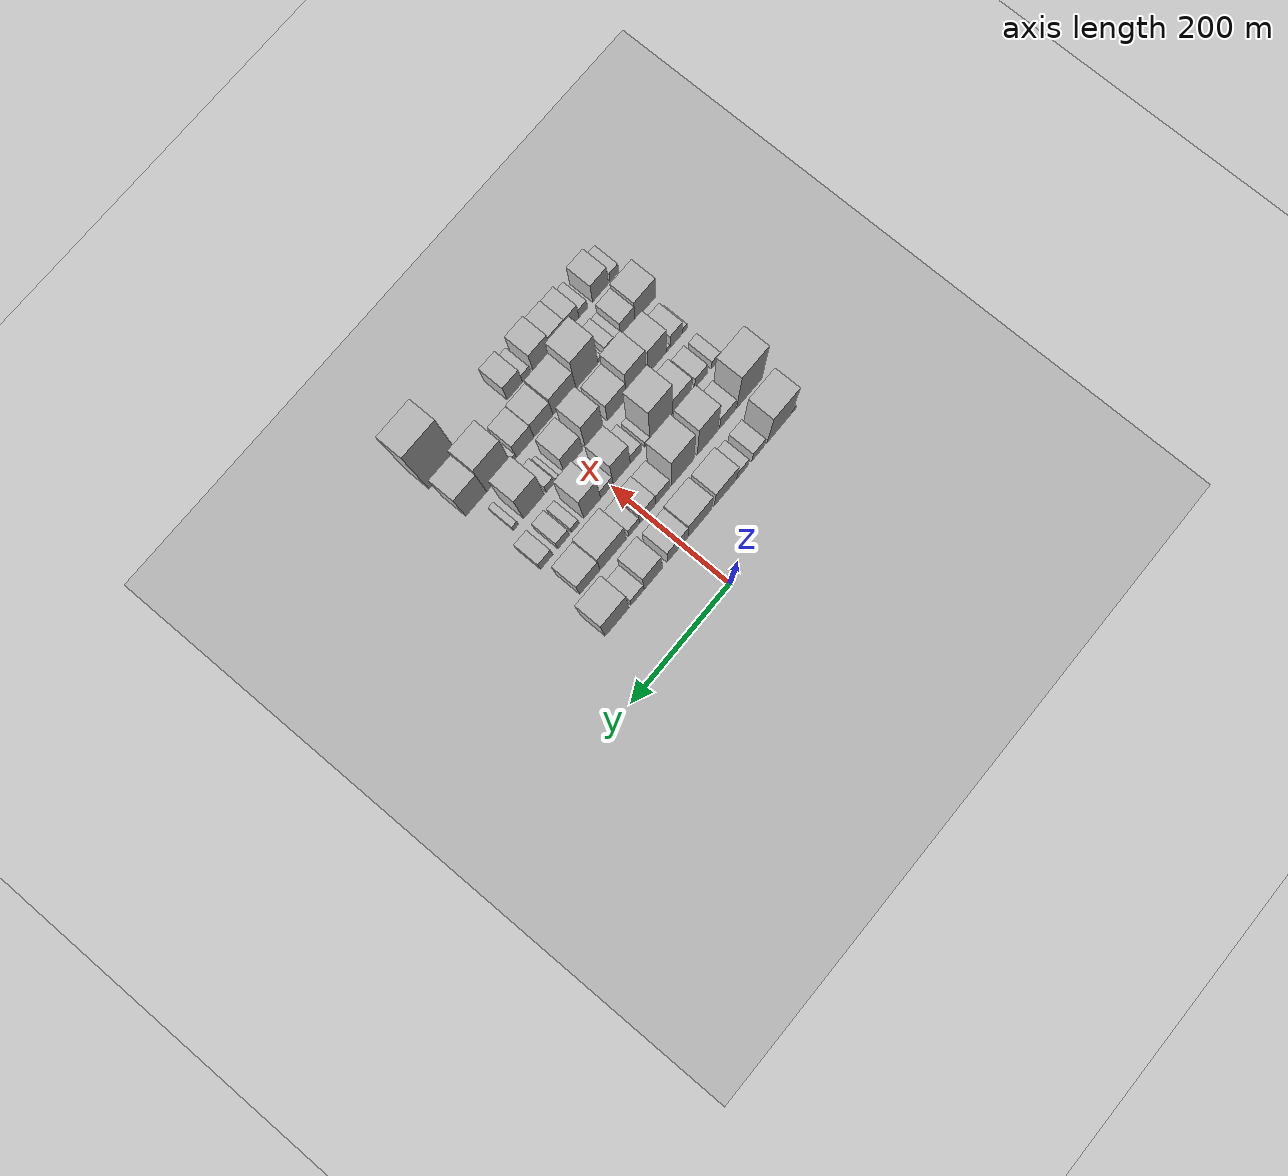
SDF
<sdf version="1.6">
 <world name="default">
  <include><name>ground_plane_1</name><uri>model://HANNAS_ground_plane</uri></include>
  <include>
   <name>ground_plane_2</name>
   <uri>model://HANNAS_ground_plane</uri>
   <pose>100 0 0  0 0 0</pose>
  </include>
  <model name="building_21">
   <static>1</static>
   <pose>100.0000 -228.6467 0 0.000000 0.000000 0.000000</pose>
   <link name="link">
    <pose>0 0 10.50 0 0 0</pose>
    <collision name="collision"><geometry><box><size>40.0000 8.6366 21.0000</size></box></geometry></collision>
    <visual name="visual">
     <cast_shadows>0</cast_shadows>
     <geometry><box><size>40.0000 8.6366 21.0000</size></box></geometry>
     <material>
      <script>
       <uri>model://HANNAS_wall/materials/scripts</uri>
       <uri>model://HANNAS_wall/materials/textures</uri>
       <name>vrc/HANNAS_wall</name>
      </script>
     </material>
    </visual>
   </link>
  </model>
  <model name="building_22">
   <static>1</static>
   <pose>100.0000 -198.5021 0 0.000000 0.000000 0.000000</pose>
   <link name="link">
    <pose>0 0 66.00 0 0 0</pose>
    <collision name="collision"><geometry><box><size>40.0000 51.6525 132.0000</size></box></geometry></collision>
    <visual name="visual">
     <cast_shadows>0</cast_shadows>
     <geometry><box><size>40.0000 51.6525 132.0000</size></box></geometry>
     <material>
      <script>
       <uri>model://HANNAS_wall/materials/scripts</uri>
       <uri>model://HANNAS_wall/materials/textures</uri>
       <name>vrc/HANNAS_wall</name>
      </script>
     </material>
    </visual>
   </link>
  </model>
  <model name="building_23">
   <static>1</static>
   <pose>100.0000 -153.9269 0 0.000000 0.000000 0.000000</pose>
   <link name="link">
    <pose>0 0 24.00 0 0 0</pose>
    <collision name="collision"><geometry><box><size>40.0000 25.4979 48.0000</size></box></geometry></collision>
    <visual name="visual">
     <cast_shadows>0</cast_shadows>
     <geometry><box><size>40.0000 25.4979 48.0000</size></box></geometry>
     <material>
      <script>
       <uri>model://HANNAS_wall/materials/scripts</uri>
       <uri>model://HANNAS_wall/materials/textures</uri>
       <name>vrc/HANNAS_wall</name>
      </script>
     </material>
    </visual>
   </link>
  </model>
  <model name="building_24">
   <static>1</static>
   <pose>100.0000 -121.7348 0 0.000000 0.000000 0.000000</pose>
   <link name="link">
    <pose>0 0 22.50 0 0 0</pose>
    <collision name="collision"><geometry><box><size>40.0000 22.8863 45.0000</size></box></geometry></collision>
    <visual name="visual">
     <cast_shadows>0</cast_shadows>
     <geometry><box><size>40.0000 22.8863 45.0000</size></box></geometry>
     <material>
      <script>
       <uri>model://HANNAS_wall/materials/scripts</uri>
       <uri>model://HANNAS_wall/materials/textures</uri>
       <name>vrc/HANNAS_wall</name>
      </script>
     </material>
    </visual>
   </link>
  </model>
  <model name="building_25">
   <static>1</static>
   <pose>100.0000 -87.3126 0 0.000000 0.000000 0.000000</pose>
   <link name="link">
    <pose>0 0 40.50 0 0 0</pose>
    <collision name="collision"><geometry><box><size>40.0000 45.9582 81.0000</size></box></geometry></collision>
    <visual name="visual">
     <cast_shadows>0</cast_shadows>
     <geometry><box><size>40.0000 45.9582 81.0000</size></box></geometry>
     <material>
      <script>
       <uri>model://HANNAS_wall/materials/scripts</uri>
       <uri>model://HANNAS_wall/materials/textures</uri>
       <name>vrc/HANNAS_wall</name>
      </script>
     </material>
    </visual>
   </link>
  </model>
  <model name="building_26">
   <static>1</static>
   <pose>100.0000 -35.0738 0 0.000000 0.000000 0.000000</pose>
   <link name="link">
    <pose>0 0 43.50 0 0 0</pose>
    <collision name="collision"><geometry><box><size>40.0000 48.5195 87.0000</size></box></geometry></collision>
    <visual name="visual">
     <cast_shadows>0</cast_shadows>
     <geometry><box><size>40.0000 48.5195 87.0000</size></box></geometry>
     <material>
      <script>
       <uri>model://HANNAS_wall/materials/scripts</uri>
       <uri>model://HANNAS_wall/materials/textures</uri>
       <name>vrc/HANNAS_wall</name>
      </script>
     </material>
    </visual>
   </link>
  </model>
  <model name="building_27">
   <static>1</static>
   <pose>100.0000 10.1587 0 0.000000 0.000000 0.000000</pose>
   <link name="link">
    <pose>0 0 39.00 0 0 0</pose>
    <collision name="collision"><geometry><box><size>40.0000 41.9455 78.0000</size></box></geometry></collision>
    <visual name="visual">
     <cast_shadows>0</cast_shadows>
     <geometry><box><size>40.0000 41.9455 78.0000</size></box></geometry>
     <material>
      <script>
       <uri>model://HANNAS_wall/materials/scripts</uri>
       <uri>model://HANNAS_wall/materials/textures</uri>
       <name>vrc/HANNAS_wall</name>
      </script>
     </material>
    </visual>
   </link>
  </model>
  <model name="building_28">
   <static>1</static>
   <pose>100.0000 59.2522 0 0.000000 0.000000 0.000000</pose>
   <link name="link">
    <pose>0 0 52.50 0 0 0</pose>
    <collision name="collision"><geometry><box><size>40.0000 36.2415 105.0000</size></box></geometry></collision>
    <visual name="visual">
     <cast_shadows>0</cast_shadows>
     <geometry><box><size>40.0000 36.2415 105.0000</size></box></geometry>
     <material>
      <script>
       <uri>model://HANNAS_wall/materials/scripts</uri>
       <uri>model://HANNAS_wall/materials/textures</uri>
       <name>vrc/HANNAS_wall</name>
      </script>
     </material>
    </visual>
   </link>
  </model>
  <model name="building_29">
   <static>1</static>
   <pose>100.0000 90.4349 0 0.000000 0.000000 0.000000</pose>
   <link name="link">
    <pose>0 0 25.50 0 0 0</pose>
    <collision name="collision"><geometry><box><size>40.0000 26.1238 51.0000</size></box></geometry></collision>
    <visual name="visual">
     <cast_shadows>0</cast_shadows>
     <geometry><box><size>40.0000 26.1238 51.0000</size></box></geometry>
     <material>
      <script>
       <uri>model://HANNAS_wall/materials/scripts</uri>
       <uri>model://HANNAS_wall/materials/textures</uri>
       <name>vrc/HANNAS_wall</name>
      </script>
     </material>
    </visual>
   </link>
  </model>
  <model name="building_30">
   <static>1</static>
   <pose>100.0000 131.2381 0 0.000000 0.000000 0.000000</pose>
   <link name="link">
    <pose>0 0 64.50 0 0 0</pose>
    <collision name="collision"><geometry><box><size>40.0000 47.4826 129.0000</size></box></geometry></collision>
    <visual name="visual">
     <cast_shadows>0</cast_shadows>
     <geometry><box><size>40.0000 47.4826 129.0000</size></box></geometry>
     <material>
      <script>
       <uri>model://HANNAS_wall/materials/scripts</uri>
       <uri>model://HANNAS_wall/materials/textures</uri>
       <name>vrc/HANNAS_wall</name>
      </script>
     </material>
    </visual>
   </link>
  </model>
  <model name="building_71">
   <static>1</static>
   <pose>160.0000 -210.0278 0 0.000000 0.000000 0.000000</pose>
   <link name="link">
    <pose>0 0 75.00 0 0 0</pose>
    <collision name="collision"><geometry><box><size>40.0000 52.8146 150.0000</size></box></geometry></collision>
    <visual name="visual">
     <cast_shadows>0</cast_shadows>
     <geometry><box><size>40.0000 52.8146 150.0000</size></box></geometry>
     <material>
      <script>
       <uri>model://HANNAS_wall/materials/scripts</uri>
       <uri>model://HANNAS_wall/materials/textures</uri>
       <name>vrc/HANNAS_wall</name>
      </script>
     </material>
    </visual>
   </link>
  </model>
  <model name="building_72">
   <static>1</static>
   <pose>160.0000 -164.4180 0 0.000000 0.000000 0.000000</pose>
   <link name="link">
    <pose>0 0 28.50 0 0 0</pose>
    <collision name="collision"><geometry><box><size>40.0000 32.4051 57.0000</size></box></geometry></collision>
    <visual name="visual">
     <cast_shadows>0</cast_shadows>
     <geometry><box><size>40.0000 32.4051 57.0000</size></box></geometry>
     <material>
      <script>
       <uri>model://HANNAS_wall/materials/scripts</uri>
       <uri>model://HANNAS_wall/materials/textures</uri>
       <name>vrc/HANNAS_wall</name>
      </script>
     </material>
    </visual>
   </link>
  </model>
  <model name="building_73">
   <static>1</static>
   <pose>160.0000 -123.4786 0 0.000000 0.000000 0.000000</pose>
   <link name="link">
    <pose>0 0 69.00 0 0 0</pose>
    <collision name="collision"><geometry><box><size>40.0000 41.4736 138.0000</size></box></geometry></collision>
    <visual name="visual">
     <cast_shadows>0</cast_shadows>
     <geometry><box><size>40.0000 41.4736 138.0000</size></box></geometry>
     <material>
      <script>
       <uri>model://HANNAS_wall/materials/scripts</uri>
       <uri>model://HANNAS_wall/materials/textures</uri>
       <name>vrc/HANNAS_wall</name>
      </script>
     </material>
    </visual>
   </link>
  </model>
  <model name="building_74">
   <static>1</static>
   <pose>160.0000 -72.6001 0 0.000000 0.000000 0.000000</pose>
   <link name="link">
    <pose>0 0 70.50 0 0 0</pose>
    <collision name="collision"><geometry><box><size>40.0000 46.2834 141.0000</size></box></geometry></collision>
    <visual name="visual">
     <cast_shadows>0</cast_shadows>
     <geometry><box><size>40.0000 46.2834 141.0000</size></box></geometry>
     <material>
      <script>
       <uri>model://HANNAS_wall/materials/scripts</uri>
       <uri>model://HANNAS_wall/materials/textures</uri>
       <name>vrc/HANNAS_wall</name>
      </script>
     </material>
    </visual>
   </link>
  </model>
  <model name="building_75">
   <static>1</static>
   <pose>160.0000 -32.2516 0 0.000000 0.000000 0.000000</pose>
   <link name="link">
    <pose>0 0 27.00 0 0 0</pose>
    <collision name="collision"><geometry><box><size>40.0000 28.4136 54.0000</size></box></geometry></collision>
    <visual name="visual">
     <cast_shadows>0</cast_shadows>
     <geometry><box><size>40.0000 28.4136 54.0000</size></box></geometry>
     <material>
      <script>
       <uri>model://HANNAS_wall/materials/scripts</uri>
       <uri>model://HANNAS_wall/materials/textures</uri>
       <name>vrc/HANNAS_wall</name>
      </script>
     </material>
    </visual>
   </link>
  </model>
  <model name="building_76">
   <static>1</static>
   <pose>160.0000 -1.5820 0 0.000000 0.000000 0.000000</pose>
   <link name="link">
    <pose>0 0 30.00 0 0 0</pose>
    <collision name="collision"><geometry><box><size>40.0000 32.9256 60.0000</size></box></geometry></collision>
    <visual name="visual">
     <cast_shadows>0</cast_shadows>
     <geometry><box><size>40.0000 32.9256 60.0000</size></box></geometry>
     <material>
      <script>
       <uri>model://HANNAS_wall/materials/scripts</uri>
       <uri>model://HANNAS_wall/materials/textures</uri>
       <name>vrc/HANNAS_wall</name>
      </script>
     </material>
    </visual>
   </link>
  </model>
  <model name="building_77">
   <static>1</static>
   <pose>160.0000 25.7807 0 0.000000 0.000000 0.000000</pose>
   <link name="link">
    <pose>0 0 21.00 0 0 0</pose>
    <collision name="collision"><geometry><box><size>40.0000 21.7997 42.0000</size></box></geometry></collision>
    <visual name="visual">
     <cast_shadows>0</cast_shadows>
     <geometry><box><size>40.0000 21.7997 42.0000</size></box></geometry>
     <material>
      <script>
       <uri>model://HANNAS_wall/materials/scripts</uri>
       <uri>model://HANNAS_wall/materials/textures</uri>
       <name>vrc/HANNAS_wall</name>
      </script>
     </material>
    </visual>
   </link>
  </model>
  <model name="building_78">
   <static>1</static>
   <pose>160.0000 67.6978 0 0.000000 0.000000 0.000000</pose>
   <link name="link">
    <pose>0 0 45.00 0 0 0</pose>
    <collision name="collision"><geometry><box><size>40.0000 52.0346 90.0000</size></box></geometry></collision>
    <visual name="visual">
     <cast_shadows>0</cast_shadows>
     <geometry><box><size>40.0000 52.0346 90.0000</size></box></geometry>
     <material>
      <script>
       <uri>model://HANNAS_wall/materials/scripts</uri>
       <uri>model://HANNAS_wall/materials/textures</uri>
       <name>vrc/HANNAS_wall</name>
      </script>
     </material>
    </visual>
   </link>
  </model>
  <model name="building_79">
   <static>1</static>
   <pose>160.0000 114.1384 0 0.000000 0.000000 0.000000</pose>
   <link name="link">
    <pose>0 0 37.50 0 0 0</pose>
    <collision name="collision"><geometry><box><size>40.0000 40.8465 75.0000</size></box></geometry></collision>
    <visual name="visual">
     <cast_shadows>0</cast_shadows>
     <geometry><box><size>40.0000 40.8465 75.0000</size></box></geometry>
     <material>
      <script>
       <uri>model://HANNAS_wall/materials/scripts</uri>
       <uri>model://HANNAS_wall/materials/textures</uri>
       <name>vrc/HANNAS_wall</name>
      </script>
     </material>
    </visual>
   </link>
  </model>
  <model name="building_124">
   <static>1</static>
   <pose>220.0000 -213.4860 0 0.000000 0.000000 0.000000</pose>
   <link name="link">
    <pose>0 0 16.50 0 0 0</pose>
    <collision name="collision"><geometry><box><size>40.0000 17.3899 33.0000</size></box></geometry></collision>
    <visual name="visual">
     <cast_shadows>0</cast_shadows>
     <geometry><box><size>40.0000 17.3899 33.0000</size></box></geometry>
     <material>
      <script>
       <uri>model://HANNAS_wall/materials/scripts</uri>
       <uri>model://HANNAS_wall/materials/textures</uri>
       <name>vrc/HANNAS_wall</name>
      </script>
     </material>
    </visual>
   </link>
  </model>
  <model name="building_125">
   <static>1</static>
   <pose>220.0000 -182.9198 0 0.000000 0.000000 0.000000</pose>
   <link name="link">
    <pose>0 0 22.50 0 0 0</pose>
    <collision name="collision"><geometry><box><size>40.0000 25.7425 45.0000</size></box></geometry></collision>
    <visual name="visual">
     <cast_shadows>0</cast_shadows>
     <geometry><box><size>40.0000 25.7425 45.0000</size></box></geometry>
     <material>
      <script>
       <uri>model://HANNAS_wall/materials/scripts</uri>
       <uri>model://HANNAS_wall/materials/textures</uri>
       <name>vrc/HANNAS_wall</name>
      </script>
     </material>
    </visual>
   </link>
  </model>
  <model name="building_126">
   <static>1</static>
   <pose>220.0000 -166.7514 0 0.000000 0.000000 0.000000</pose>
   <link name="link">
    <pose>0 0 7.50 0 0 0</pose>
    <collision name="collision"><geometry><box><size>40.0000 6.5944 15.0000</size></box></geometry></collision>
    <visual name="visual">
     <cast_shadows>0</cast_shadows>
     <geometry><box><size>40.0000 6.5944 15.0000</size></box></geometry>
     <material>
      <script>
       <uri>model://HANNAS_wall/materials/scripts</uri>
       <uri>model://HANNAS_wall/materials/textures</uri>
       <name>vrc/HANNAS_wall</name>
      </script>
     </material>
    </visual>
   </link>
  </model>
  <model name="building_127">
   <static>1</static>
   <pose>220.0000 -143.8408 0 0.000000 0.000000 0.000000</pose>
   <link name="link">
    <pose>0 0 34.50 0 0 0</pose>
    <collision name="collision"><geometry><box><size>40.0000 39.2267 69.0000</size></box></geometry></collision>
    <visual name="visual">
     <cast_shadows>0</cast_shadows>
     <geometry><box><size>40.0000 39.2267 69.0000</size></box></geometry>
     <material>
      <script>
       <uri>model://HANNAS_wall/materials/scripts</uri>
       <uri>model://HANNAS_wall/materials/textures</uri>
       <name>vrc/HANNAS_wall</name>
      </script>
     </material>
    </visual>
   </link>
  </model>
  <model name="building_128">
   <static>1</static>
   <pose>220.0000 -101.2185 0 0.000000 0.000000 0.000000</pose>
   <link name="link">
    <pose>0 0 73.50 0 0 0</pose>
    <collision name="collision"><geometry><box><size>40.0000 46.0180 147.0000</size></box></geometry></collision>
    <visual name="visual">
     <cast_shadows>0</cast_shadows>
     <geometry><box><size>40.0000 46.0180 147.0000</size></box></geometry>
     <material>
      <script>
       <uri>model://HANNAS_wall/materials/scripts</uri>
       <uri>model://HANNAS_wall/materials/textures</uri>
       <name>vrc/HANNAS_wall</name>
      </script>
     </material>
    </visual>
   </link>
  </model>
  <model name="building_129">
   <static>1</static>
   <pose>220.0000 -73.0783 0 0.000000 0.000000 0.000000</pose>
   <link name="link">
    <pose>0 0 12.00 0 0 0</pose>
    <collision name="collision"><geometry><box><size>40.0000 10.2624 24.0000</size></box></geometry></collision>
    <visual name="visual">
     <cast_shadows>0</cast_shadows>
     <geometry><box><size>40.0000 10.2624 24.0000</size></box></geometry>
     <material>
      <script>
       <uri>model://HANNAS_wall/materials/scripts</uri>
       <uri>model://HANNAS_wall/materials/textures</uri>
       <name>vrc/HANNAS_wall</name>
      </script>
     </material>
    </visual>
   </link>
  </model>
  <model name="building_130">
   <static>1</static>
   <pose>220.0000 -49.6508 0 0.000000 0.000000 0.000000</pose>
   <link name="link">
    <pose>0 0 21.00 0 0 0</pose>
    <collision name="collision"><geometry><box><size>40.0000 22.5925 42.0000</size></box></geometry></collision>
    <visual name="visual">
     <cast_shadows>0</cast_shadows>
     <geometry><box><size>40.0000 22.5925 42.0000</size></box></geometry>
     <material>
      <script>
       <uri>model://HANNAS_wall/materials/scripts</uri>
       <uri>model://HANNAS_wall/materials/textures</uri>
       <name>vrc/HANNAS_wall</name>
      </script>
     </material>
    </visual>
   </link>
  </model>
  <model name="building_131">
   <static>1</static>
   <pose>220.0000 -20.9364 0 0.000000 0.000000 0.000000</pose>
   <link name="link">
    <pose>0 0 54.00 0 0 0</pose>
    <collision name="collision"><geometry><box><size>40.0000 34.8363 108.0000</size></box></geometry></collision>
    <visual name="visual">
     <cast_shadows>0</cast_shadows>
     <geometry><box><size>40.0000 34.8363 108.0000</size></box></geometry>
     <material>
      <script>
       <uri>model://HANNAS_wall/materials/scripts</uri>
       <uri>model://HANNAS_wall/materials/textures</uri>
       <name>vrc/HANNAS_wall</name>
      </script>
     </material>
    </visual>
   </link>
  </model>
  <model name="building_132">
   <static>1</static>
   <pose>220.0000 9.0016 0 0.000000 0.000000 0.000000</pose>
   <link name="link">
    <pose>0 0 22.50 0 0 0</pose>
    <collision name="collision"><geometry><box><size>40.0000 25.0397 45.0000</size></box></geometry></collision>
    <visual name="visual">
     <cast_shadows>0</cast_shadows>
     <geometry><box><size>40.0000 25.0397 45.0000</size></box></geometry>
     <material>
      <script>
       <uri>model://HANNAS_wall/materials/scripts</uri>
       <uri>model://HANNAS_wall/materials/textures</uri>
       <name>vrc/HANNAS_wall</name>
      </script>
     </material>
    </visual>
   </link>
  </model>
  <model name="building_133">
   <static>1</static>
   <pose>220.0000 38.6240 0 0.000000 0.000000 0.000000</pose>
   <link name="link">
    <pose>0 0 57.00 0 0 0</pose>
    <collision name="collision"><geometry><box><size>40.0000 34.2051 114.0000</size></box></geometry></collision>
    <visual name="visual">
     <cast_shadows>0</cast_shadows>
     <geometry><box><size>40.0000 34.2051 114.0000</size></box></geometry>
     <material>
      <script>
       <uri>model://HANNAS_wall/materials/scripts</uri>
       <uri>model://HANNAS_wall/materials/textures</uri>
       <name>vrc/HANNAS_wall</name>
      </script>
     </material>
    </visual>
   </link>
  </model>
  <model name="building_134">
   <static>1</static>
   <pose>220.0000 72.3483 0 0.000000 0.000000 0.000000</pose>
   <link name="link">
    <pose>0 0 15.00 0 0 0</pose>
    <collision name="collision"><geometry><box><size>40.0000 15.2434 30.0000</size></box></geometry></collision>
    <visual name="visual">
     <cast_shadows>0</cast_shadows>
     <geometry><box><size>40.0000 15.2434 30.0000</size></box></geometry>
     <material>
      <script>
       <uri>model://HANNAS_wall/materials/scripts</uri>
       <uri>model://HANNAS_wall/materials/textures</uri>
       <name>vrc/HANNAS_wall</name>
      </script>
     </material>
    </visual>
   </link>
  </model>
  <model name="building_135">
   <static>1</static>
   <pose>220.0000 95.6876 0 0.000000 0.000000 0.000000</pose>
   <link name="link">
    <pose>0 0 21.00 0 0 0</pose>
    <collision name="collision"><geometry><box><size>40.0000 23.4351 42.0000</size></box></geometry></collision>
    <visual name="visual">
     <cast_shadows>0</cast_shadows>
     <geometry><box><size>40.0000 23.4351 42.0000</size></box></geometry>
     <material>
      <script>
       <uri>model://HANNAS_wall/materials/scripts</uri>
       <uri>model://HANNAS_wall/materials/textures</uri>
       <name>vrc/HANNAS_wall</name>
      </script>
     </material>
    </visual>
   </link>
  </model>
  <model name="building_136">
   <static>1</static>
   <pose>220.0000 129.7703 0 0.000000 0.000000 0.000000</pose>
   <link name="link">
    <pose>0 0 21.00 0 0 0</pose>
    <collision name="collision"><geometry><box><size>40.0000 24.7304 42.0000</size></box></geometry></collision>
    <visual name="visual">
     <cast_shadows>0</cast_shadows>
     <geometry><box><size>40.0000 24.7304 42.0000</size></box></geometry>
     <material>
      <script>
       <uri>model://HANNAS_wall/materials/scripts</uri>
       <uri>model://HANNAS_wall/materials/textures</uri>
       <name>vrc/HANNAS_wall</name>
      </script>
     </material>
    </visual>
   </link>
  </model>
  <model name="building_181">
   <static>1</static>
   <pose>280.0000 -222.3754 0 0.000000 0.000000 0.000000</pose>
   <link name="link">
    <pose>0 0 10.50 0 0 0</pose>
    <collision name="collision"><geometry><box><size>40.0000 9.1433 21.0000</size></box></geometry></collision>
    <visual name="visual">
     <cast_shadows>0</cast_shadows>
     <geometry><box><size>40.0000 9.1433 21.0000</size></box></geometry>
     <material>
      <script>
       <uri>model://HANNAS_wall/materials/scripts</uri>
       <uri>model://HANNAS_wall/materials/textures</uri>
       <name>vrc/HANNAS_wall</name>
      </script>
     </material>
    </visual>
   </link>
  </model>
  <model name="building_182">
   <static>1</static>
   <pose>280.0000 -204.7117 0 0.000000 0.000000 0.000000</pose>
   <link name="link">
    <pose>0 0 25.50 0 0 0</pose>
    <collision name="collision"><geometry><box><size>40.0000 26.1842 51.0000</size></box></geometry></collision>
    <visual name="visual">
     <cast_shadows>0</cast_shadows>
     <geometry><box><size>40.0000 26.1842 51.0000</size></box></geometry>
     <material>
      <script>
       <uri>model://HANNAS_wall/materials/scripts</uri>
       <uri>model://HANNAS_wall/materials/textures</uri>
       <name>vrc/HANNAS_wall</name>
      </script>
     </material>
    </visual>
   </link>
  </model>
  <model name="building_183">
   <static>1</static>
   <pose>280.0000 -188.2102 0 0.000000 0.000000 0.000000</pose>
   <link name="link">
    <pose>0 0 7.50 0 0 0</pose>
    <collision name="collision"><geometry><box><size>40.0000 6.8188 15.0000</size></box></geometry></collision>
    <visual name="visual">
     <cast_shadows>0</cast_shadows>
     <geometry><box><size>40.0000 6.8188 15.0000</size></box></geometry>
     <material>
      <script>
       <uri>model://HANNAS_wall/materials/scripts</uri>
       <uri>model://HANNAS_wall/materials/textures</uri>
       <name>vrc/HANNAS_wall</name>
      </script>
     </material>
    </visual>
   </link>
  </model>
  <model name="building_184">
   <static>1</static>
   <pose>280.0000 -165.6061 0 0.000000 0.000000 0.000000</pose>
   <link name="link">
    <pose>0 0 48.00 0 0 0</pose>
    <collision name="collision"><geometry><box><size>40.0000 38.3895 96.0000</size></box></geometry></collision>
    <visual name="visual">
     <cast_shadows>0</cast_shadows>
     <geometry><box><size>40.0000 38.3895 96.0000</size></box></geometry>
     <material>
      <script>
       <uri>model://HANNAS_wall/materials/scripts</uri>
       <uri>model://HANNAS_wall/materials/textures</uri>
       <name>vrc/HANNAS_wall</name>
      </script>
     </material>
    </visual>
   </link>
  </model>
  <model name="building_185">
   <static>1</static>
   <pose>280.0000 -123.2607 0 0.000000 0.000000 0.000000</pose>
   <link name="link">
    <pose>0 0 57.00 0 0 0</pose>
    <collision name="collision"><geometry><box><size>40.0000 40.3012 114.0000</size></box></geometry></collision>
    <visual name="visual">
     <cast_shadows>0</cast_shadows>
     <geometry><box><size>40.0000 40.3012 114.0000</size></box></geometry>
     <material>
      <script>
       <uri>model://HANNAS_wall/materials/scripts</uri>
       <uri>model://HANNAS_wall/materials/textures</uri>
       <name>vrc/HANNAS_wall</name>
      </script>
     </material>
    </visual>
   </link>
  </model>
  <model name="building_186">
   <static>1</static>
   <pose>280.0000 -83.1280 0 0.000000 0.000000 0.000000</pose>
   <link name="link">
    <pose>0 0 37.50 0 0 0</pose>
    <collision name="collision"><geometry><box><size>40.0000 39.9642 75.0000</size></box></geometry></collision>
    <visual name="visual">
     <cast_shadows>0</cast_shadows>
     <geometry><box><size>40.0000 39.9642 75.0000</size></box></geometry>
     <material>
      <script>
       <uri>model://HANNAS_wall/materials/scripts</uri>
       <uri>model://HANNAS_wall/materials/textures</uri>
       <name>vrc/HANNAS_wall</name>
      </script>
     </material>
    </visual>
   </link>
  </model>
  <model name="building_187">
   <static>1</static>
   <pose>280.0000 -36.0659 0 0.000000 0.000000 0.000000</pose>
   <link name="link">
    <pose>0 0 52.50 0 0 0</pose>
    <collision name="collision"><geometry><box><size>40.0000 36.1599 105.0000</size></box></geometry></collision>
    <visual name="visual">
     <cast_shadows>0</cast_shadows>
     <geometry><box><size>40.0000 36.1599 105.0000</size></box></geometry>
     <material>
      <script>
       <uri>model://HANNAS_wall/materials/scripts</uri>
       <uri>model://HANNAS_wall/materials/textures</uri>
       <name>vrc/HANNAS_wall</name>
      </script>
     </material>
    </visual>
   </link>
  </model>
  <model name="building_188">
   <static>1</static>
   <pose>280.0000 6.1633 0 0.000000 0.000000 0.000000</pose>
   <link name="link">
    <pose>0 0 37.50 0 0 0</pose>
    <collision name="collision"><geometry><box><size>40.0000 38.2986 75.0000</size></box></geometry></collision>
    <visual name="visual">
     <cast_shadows>0</cast_shadows>
     <geometry><box><size>40.0000 38.2986 75.0000</size></box></geometry>
     <material>
      <script>
       <uri>model://HANNAS_wall/materials/scripts</uri>
       <uri>model://HANNAS_wall/materials/textures</uri>
       <name>vrc/HANNAS_wall</name>
      </script>
     </material>
    </visual>
   </link>
  </model>
  <model name="building_189">
   <static>1</static>
   <pose>280.0000 37.6677 0 0.000000 0.000000 0.000000</pose>
   <link name="link">
    <pose>0 0 7.50 0 0 0</pose>
    <collision name="collision"><geometry><box><size>40.0000 6.7100 15.0000</size></box></geometry></collision>
    <visual name="visual">
     <cast_shadows>0</cast_shadows>
     <geometry><box><size>40.0000 6.7100 15.0000</size></box></geometry>
     <material>
      <script>
       <uri>model://HANNAS_wall/materials/scripts</uri>
       <uri>model://HANNAS_wall/materials/textures</uri>
       <name>vrc/HANNAS_wall</name>
      </script>
     </material>
    </visual>
   </link>
  </model>
  <model name="building_190">
   <static>1</static>
   <pose>280.0000 52.2767 0 0.000000 0.000000 0.000000</pose>
   <link name="link">
    <pose>0 0 16.50 0 0 0</pose>
    <collision name="collision"><geometry><box><size>40.0000 16.5081 33.0000</size></box></geometry></collision>
    <visual name="visual">
     <cast_shadows>0</cast_shadows>
     <geometry><box><size>40.0000 16.5081 33.0000</size></box></geometry>
     <material>
      <script>
       <uri>model://HANNAS_wall/materials/scripts</uri>
       <uri>model://HANNAS_wall/materials/textures</uri>
       <name>vrc/HANNAS_wall</name>
      </script>
     </material>
    </visual>
   </link>
  </model>
  <model name="building_191">
   <static>1</static>
   <pose>280.0000 85.1030 0 0.000000 0.000000 0.000000</pose>
   <link name="link">
    <pose>0 0 60.00 0 0 0</pose>
    <collision name="collision"><geometry><box><size>40.0000 41.1444 120.0000</size></box></geometry></collision>
    <visual name="visual">
     <cast_shadows>0</cast_shadows>
     <geometry><box><size>40.0000 41.1444 120.0000</size></box></geometry>
     <material>
      <script>
       <uri>model://HANNAS_wall/materials/scripts</uri>
       <uri>model://HANNAS_wall/materials/textures</uri>
       <name>vrc/HANNAS_wall</name>
      </script>
     </material>
    </visual>
   </link>
  </model>
  <model name="building_192">
   <static>1</static>
   <pose>280.0000 120.7828 0 0.000000 0.000000 0.000000</pose>
   <link name="link">
    <pose>0 0 12.00 0 0 0</pose>
    <collision name="collision"><geometry><box><size>40.0000 10.2152 24.0000</size></box></geometry></collision>
    <visual name="visual">
     <cast_shadows>0</cast_shadows>
     <geometry><box><size>40.0000 10.2152 24.0000</size></box></geometry>
     <material>
      <script>
       <uri>model://HANNAS_wall/materials/scripts</uri>
       <uri>model://HANNAS_wall/materials/textures</uri>
       <name>vrc/HANNAS_wall</name>
      </script>
     </material>
    </visual>
   </link>
  </model>
  <model name="building_244">
   <static>1</static>
   <pose>340.0000 -213.0390 0 0.000000 0.000000 0.000000</pose>
   <link name="link">
    <pose>0 0 36.00 0 0 0</pose>
    <collision name="collision"><geometry><box><size>40.0000 43.1940 72.0000</size></box></geometry></collision>
    <visual name="visual">
     <cast_shadows>0</cast_shadows>
     <geometry><box><size>40.0000 43.1940 72.0000</size></box></geometry>
     <material>
      <script>
       <uri>model://HANNAS_wall/materials/scripts</uri>
       <uri>model://HANNAS_wall/materials/textures</uri>
       <name>vrc/HANNAS_wall</name>
      </script>
     </material>
    </visual>
   </link>
  </model>
  <model name="building_245">
   <static>1</static>
   <pose>340.0000 -176.6121 0 0.000000 0.000000 0.000000</pose>
   <link name="link">
    <pose>0 0 28.50 0 0 0</pose>
    <collision name="collision"><geometry><box><size>40.0000 29.6598 57.0000</size></box></geometry></collision>
    <visual name="visual">
     <cast_shadows>0</cast_shadows>
     <geometry><box><size>40.0000 29.6598 57.0000</size></box></geometry>
     <material>
      <script>
       <uri>model://HANNAS_wall/materials/scripts</uri>
       <uri>model://HANNAS_wall/materials/textures</uri>
       <name>vrc/HANNAS_wall</name>
      </script>
     </material>
    </visual>
   </link>
  </model>
  <model name="building_246">
   <static>1</static>
   <pose>340.0000 -155.2711 0 0.000000 0.000000 0.000000</pose>
   <link name="link">
    <pose>0 0 13.50 0 0 0</pose>
    <collision name="collision"><geometry><box><size>40.0000 13.0223 27.0000</size></box></geometry></collision>
    <visual name="visual">
     <cast_shadows>0</cast_shadows>
     <geometry><box><size>40.0000 13.0223 27.0000</size></box></geometry>
     <material>
      <script>
       <uri>model://HANNAS_wall/materials/scripts</uri>
       <uri>model://HANNAS_wall/materials/textures</uri>
       <name>vrc/HANNAS_wall</name>
      </script>
     </material>
    </visual>
   </link>
  </model>
  <model name="building_247">
   <static>1</static>
   <pose>340.0000 -139.2581 0 0.000000 0.000000 0.000000</pose>
   <link name="link">
    <pose>0 0 16.50 0 0 0</pose>
    <collision name="collision"><geometry><box><size>40.0000 19.0036 33.0000</size></box></geometry></collision>
    <visual name="visual">
     <cast_shadows>0</cast_shadows>
     <geometry><box><size>40.0000 19.0036 33.0000</size></box></geometry>
     <material>
      <script>
       <uri>model://HANNAS_wall/materials/scripts</uri>
       <uri>model://HANNAS_wall/materials/textures</uri>
       <name>vrc/HANNAS_wall</name>
      </script>
     </material>
    </visual>
   </link>
  </model>
  <model name="building_248">
   <static>1</static>
   <pose>340.0000 -119.1163 0 0.000000 0.000000 0.000000</pose>
   <link name="link">
    <pose>0 0 9.00 0 0 0</pose>
    <collision name="collision"><geometry><box><size>40.0000 7.2800 18.0000</size></box></geometry></collision>
    <visual name="visual">
     <cast_shadows>0</cast_shadows>
     <geometry><box><size>40.0000 7.2800 18.0000</size></box></geometry>
     <material>
      <script>
       <uri>model://HANNAS_wall/materials/scripts</uri>
       <uri>model://HANNAS_wall/materials/textures</uri>
       <name>vrc/HANNAS_wall</name>
      </script>
     </material>
    </visual>
   </link>
  </model>
  <model name="building_249">
   <static>1</static>
   <pose>340.0000 -92.9095 0 0.000000 0.000000 0.000000</pose>
   <link name="link">
    <pose>0 0 60.00 0 0 0</pose>
    <collision name="collision"><geometry><box><size>40.0000 45.1337 120.0000</size></box></geometry></collision>
    <visual name="visual">
     <cast_shadows>0</cast_shadows>
     <geometry><box><size>40.0000 45.1337 120.0000</size></box></geometry>
     <material>
      <script>
       <uri>model://HANNAS_wall/materials/scripts</uri>
       <uri>model://HANNAS_wall/materials/textures</uri>
       <name>vrc/HANNAS_wall</name>
      </script>
     </material>
    </visual>
   </link>
  </model>
  <model name="building_250">
   <static>1</static>
   <pose>340.0000 -46.9924 0 0.000000 0.000000 0.000000</pose>
   <link name="link">
    <pose>0 0 39.00 0 0 0</pose>
    <collision name="collision"><geometry><box><size>40.0000 46.7005 78.0000</size></box></geometry></collision>
    <visual name="visual">
     <cast_shadows>0</cast_shadows>
     <geometry><box><size>40.0000 46.7005 78.0000</size></box></geometry>
     <material>
      <script>
       <uri>model://HANNAS_wall/materials/scripts</uri>
       <uri>model://HANNAS_wall/materials/textures</uri>
       <name>vrc/HANNAS_wall</name>
      </script>
     </material>
    </visual>
   </link>
  </model>
  <model name="building_251">
   <static>1</static>
   <pose>340.0000 -4.3427 0 0.000000 0.000000 0.000000</pose>
   <link name="link">
    <pose>0 0 33.00 0 0 0</pose>
    <collision name="collision"><geometry><box><size>40.0000 38.5988 66.0000</size></box></geometry></collision>
    <visual name="visual">
     <cast_shadows>0</cast_shadows>
     <geometry><box><size>40.0000 38.5988 66.0000</size></box></geometry>
     <material>
      <script>
       <uri>model://HANNAS_wall/materials/scripts</uri>
       <uri>model://HANNAS_wall/materials/textures</uri>
       <name>vrc/HANNAS_wall</name>
      </script>
     </material>
    </visual>
   </link>
  </model>
  <model name="building_252">
   <static>1</static>
   <pose>340.0000 32.6654 0 0.000000 0.000000 0.000000</pose>
   <link name="link">
    <pose>0 0 31.50 0 0 0</pose>
    <collision name="collision"><geometry><box><size>40.0000 35.4173 63.0000</size></box></geometry></collision>
    <visual name="visual">
     <cast_shadows>0</cast_shadows>
     <geometry><box><size>40.0000 35.4173 63.0000</size></box></geometry>
     <material>
      <script>
       <uri>model://HANNAS_wall/materials/scripts</uri>
       <uri>model://HANNAS_wall/materials/textures</uri>
       <name>vrc/HANNAS_wall</name>
      </script>
     </material>
    </visual>
   </link>
  </model>
  <model name="building_253">
   <static>1</static>
   <pose>340.0000 55.2660 0 0.000000 0.000000 0.000000</pose>
   <link name="link">
    <pose>0 0 10.50 0 0 0</pose>
    <collision name="collision"><geometry><box><size>40.0000 9.7840 21.0000</size></box></geometry></collision>
    <visual name="visual">
     <cast_shadows>0</cast_shadows>
     <geometry><box><size>40.0000 9.7840 21.0000</size></box></geometry>
     <material>
      <script>
       <uri>model://HANNAS_wall/materials/scripts</uri>
       <uri>model://HANNAS_wall/materials/textures</uri>
       <name>vrc/HANNAS_wall</name>
      </script>
     </material>
    </visual>
   </link>
  </model>
  <model name="building_254">
   <static>1</static>
   <pose>340.0000 84.7617 0 0.000000 0.000000 0.000000</pose>
   <link name="link">
    <pose>0 0 66.00 0 0 0</pose>
    <collision name="collision"><geometry><box><size>40.0000 49.2074 132.0000</size></box></geometry></collision>
    <visual name="visual">
     <cast_shadows>0</cast_shadows>
     <geometry><box><size>40.0000 49.2074 132.0000</size></box></geometry>
     <material>
      <script>
       <uri>model://HANNAS_wall/materials/scripts</uri>
       <uri>model://HANNAS_wall/materials/textures</uri>
       <name>vrc/HANNAS_wall</name>
      </script>
     </material>
    </visual>
   </link>
  </model>
  <model name="building_255">
   <static>1</static>
   <pose>340.0000 130.2696 0 0.000000 0.000000 0.000000</pose>
   <link name="link">
    <pose>0 0 54.00 0 0 0</pose>
    <collision name="collision"><geometry><box><size>40.0000 41.8084 108.0000</size></box></geometry></collision>
    <visual name="visual">
     <cast_shadows>0</cast_shadows>
     <geometry><box><size>40.0000 41.8084 108.0000</size></box></geometry>
     <material>
      <script>
       <uri>model://HANNAS_wall/materials/scripts</uri>
       <uri>model://HANNAS_wall/materials/textures</uri>
       <name>vrc/HANNAS_wall</name>
      </script>
     </material>
    </visual>
   </link>
  </model>
  <model name="building_299">
   <static>1</static>
   <pose>400.0000 -219.9470 0 0.000000 0.000000 0.000000</pose>
   <link name="link">
    <pose>0 0 16.50 0 0 0</pose>
    <collision name="collision"><geometry><box><size>40.0000 18.0716 33.0000</size></box></geometry></collision>
    <visual name="visual">
     <cast_shadows>0</cast_shadows>
     <geometry><box><size>40.0000 18.0716 33.0000</size></box></geometry>
     <material>
      <script>
       <uri>model://HANNAS_wall/materials/scripts</uri>
       <uri>model://HANNAS_wall/materials/textures</uri>
       <name>vrc/HANNAS_wall</name>
      </script>
     </material>
    </visual>
   </link>
  </model>
  <model name="building_300">
   <static>1</static>
   <pose>400.0000 -191.4004 0 0.000000 0.000000 0.000000</pose>
   <link name="link">
    <pose>0 0 31.50 0 0 0</pose>
    <collision name="collision"><geometry><box><size>40.0000 33.0217 63.0000</size></box></geometry></collision>
    <visual name="visual">
     <cast_shadows>0</cast_shadows>
     <geometry><box><size>40.0000 33.0217 63.0000</size></box></geometry>
     <material>
      <script>
       <uri>model://HANNAS_wall/materials/scripts</uri>
       <uri>model://HANNAS_wall/materials/textures</uri>
       <name>vrc/HANNAS_wall</name>
      </script>
     </material>
    </visual>
   </link>
  </model>
  <model name="building_301">
   <static>1</static>
   <pose>400.0000 -155.9590 0 0.000000 0.000000 0.000000</pose>
   <link name="link">
    <pose>0 0 15.00 0 0 0</pose>
    <collision name="collision"><geometry><box><size>40.0000 17.8610 30.0000</size></box></geometry></collision>
    <visual name="visual">
     <cast_shadows>0</cast_shadows>
     <geometry><box><size>40.0000 17.8610 30.0000</size></box></geometry>
     <material>
      <script>
       <uri>model://HANNAS_wall/materials/scripts</uri>
       <uri>model://HANNAS_wall/materials/textures</uri>
       <name>vrc/HANNAS_wall</name>
      </script>
     </material>
    </visual>
   </link>
  </model>
  <model name="building_302">
   <static>1</static>
   <pose>400.0000 -133.9701 0 0.000000 0.000000 0.000000</pose>
   <link name="link">
    <pose>0 0 25.50 0 0 0</pose>
    <collision name="collision"><geometry><box><size>40.0000 26.1168 51.0000</size></box></geometry></collision>
    <visual name="visual">
     <cast_shadows>0</cast_shadows>
     <geometry><box><size>40.0000 26.1168 51.0000</size></box></geometry>
     <material>
      <script>
       <uri>model://HANNAS_wall/materials/scripts</uri>
       <uri>model://HANNAS_wall/materials/textures</uri>
       <name>vrc/HANNAS_wall</name>
      </script>
     </material>
    </visual>
   </link>
  </model>
  <model name="building_303">
   <static>1</static>
   <pose>400.0000 -104.9634 0 0.000000 0.000000 0.000000</pose>
   <link name="link">
    <pose>0 0 27.00 0 0 0</pose>
    <collision name="collision"><geometry><box><size>40.0000 31.8967 54.0000</size></box></geometry></collision>
    <visual name="visual">
     <cast_shadows>0</cast_shadows>
     <geometry><box><size>40.0000 31.8967 54.0000</size></box></geometry>
     <material>
      <script>
       <uri>model://HANNAS_wall/materials/scripts</uri>
       <uri>model://HANNAS_wall/materials/textures</uri>
       <name>vrc/HANNAS_wall</name>
      </script>
     </material>
    </visual>
   </link>
  </model>
  <model name="building_304">
   <static>1</static>
   <pose>400.0000 -70.9943 0 0.000000 0.000000 0.000000</pose>
   <link name="link">
    <pose>0 0 33.00 0 0 0</pose>
    <collision name="collision"><geometry><box><size>40.0000 36.0414 66.0000</size></box></geometry></collision>
    <visual name="visual">
     <cast_shadows>0</cast_shadows>
     <geometry><box><size>40.0000 36.0414 66.0000</size></box></geometry>
     <material>
      <script>
       <uri>model://HANNAS_wall/materials/scripts</uri>
       <uri>model://HANNAS_wall/materials/textures</uri>
       <name>vrc/HANNAS_wall</name>
      </script>
     </material>
    </visual>
   </link>
  </model>
  <model name="building_305">
   <static>1</static>
   <pose>400.0000 -40.4871 0 0.000000 0.000000 0.000000</pose>
   <link name="link">
    <pose>0 0 15.00 0 0 0</pose>
    <collision name="collision"><geometry><box><size>40.0000 16.9729 30.0000</size></box></geometry></collision>
    <visual name="visual">
     <cast_shadows>0</cast_shadows>
     <geometry><box><size>40.0000 16.9729 30.0000</size></box></geometry>
     <material>
      <script>
       <uri>model://HANNAS_wall/materials/scripts</uri>
       <uri>model://HANNAS_wall/materials/textures</uri>
       <name>vrc/HANNAS_wall</name>
      </script>
     </material>
    </visual>
   </link>
  </model>
  <model name="building_306">
   <static>1</static>
   <pose>400.0000 -16.4137 0 0.000000 0.000000 0.000000</pose>
   <link name="link">
    <pose>0 0 28.50 0 0 0</pose>
    <collision name="collision"><geometry><box><size>40.0000 31.1738 57.0000</size></box></geometry></collision>
    <visual name="visual">
     <cast_shadows>0</cast_shadows>
     <geometry><box><size>40.0000 31.1738 57.0000</size></box></geometry>
     <material>
      <script>
       <uri>model://HANNAS_wall/materials/scripts</uri>
       <uri>model://HANNAS_wall/materials/textures</uri>
       <name>vrc/HANNAS_wall</name>
      </script>
     </material>
    </visual>
   </link>
  </model>
  <model name="building_307">
   <static>1</static>
   <pose>400.0000 124.8047 0 0.000000 0.000000 0.000000</pose>
   <link name="link">
    <pose>0 0 94.50 0 0 0</pose>
    <collision name="collision"><geometry><box><size>40.0000 59.7543 189.0000</size></box></geometry></collision>
    <visual name="visual">
     <cast_shadows>0</cast_shadows>
     <geometry><box><size>40.0000 59.7543 189.0000</size></box></geometry>
     <material>
      <script>
       <uri>model://HANNAS_wall/materials/scripts</uri>
       <uri>model://HANNAS_wall/materials/textures</uri>
       <name>vrc/HANNAS_wall</name>
      </script>
     </material>
    </visual>
   </link>
  </model>
 </world>
</sdf>
